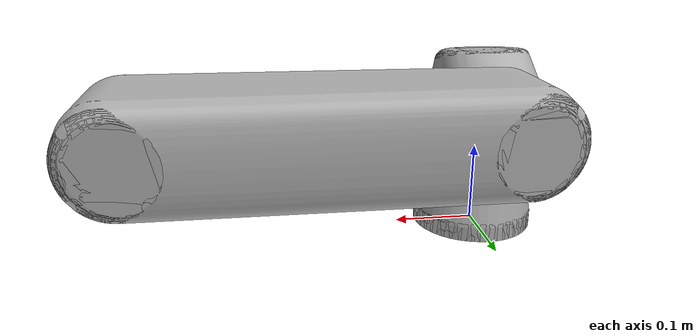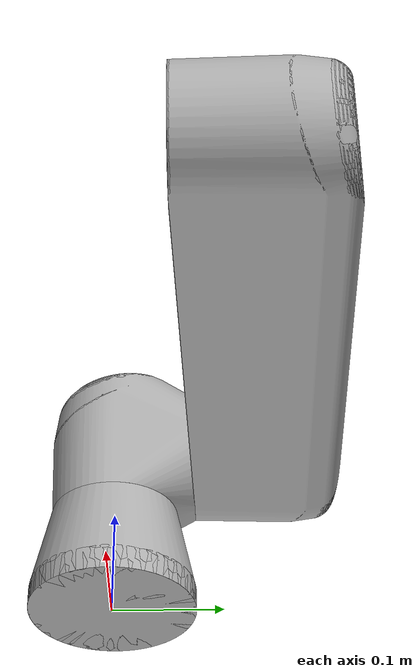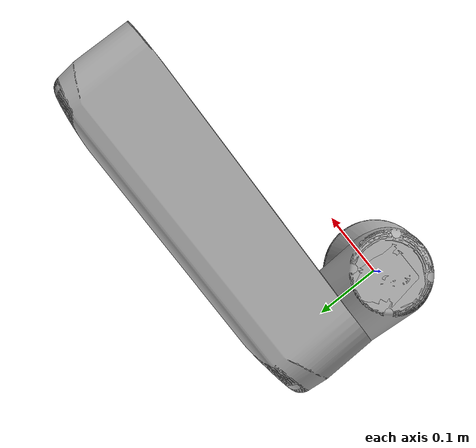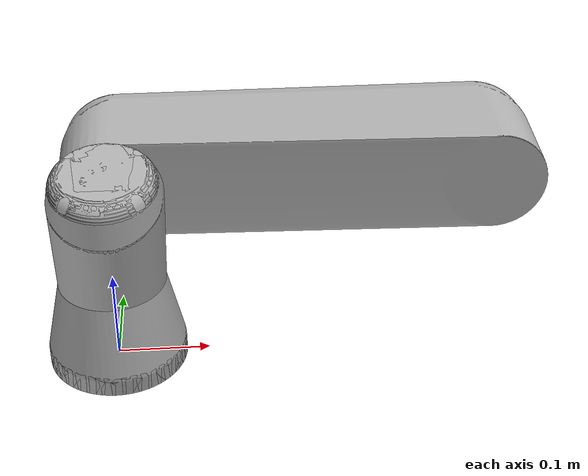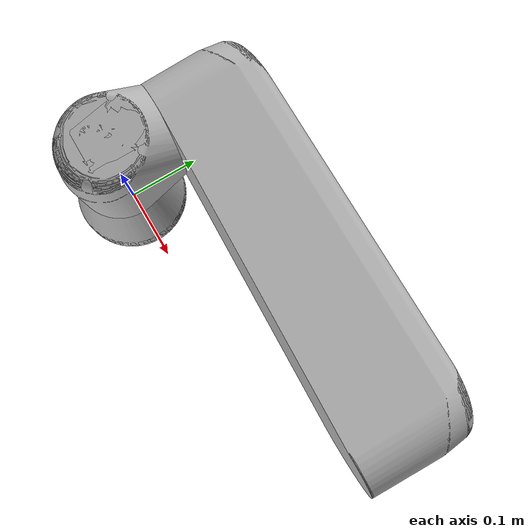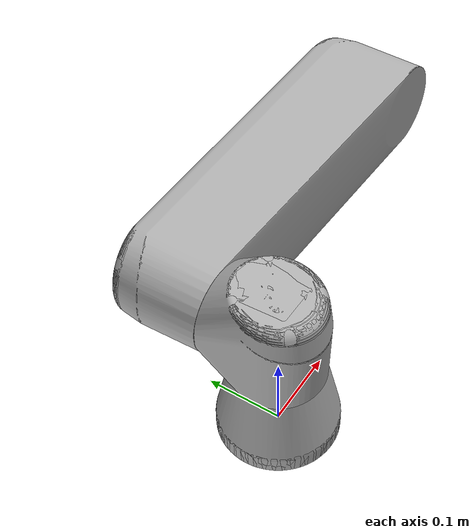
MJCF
<mujoco model="ur5e">
    <actuator>
        <!-- Physical limits of the actuator. -->
        <!-- Values taken from https://www.universal-robots.com/articles/ur-articles/max-joint-torques/ -->
        <motor ctrllimited="true" ctrlrange="-150.0 150.0" joint="shoulder_pan_joint" name="torq_j1"/>
        <motor ctrllimited="true" ctrlrange="-150.0 150.0" joint="shoulder_lift_joint" name="torq_j2"/>
    </actuator>
    <asset>
        <mesh name="base" file="meshes/base.stl" />
        <mesh name="shoulder" file="meshes/shoulder.stl" />
        <mesh name="upperarm" file="meshes/upperarm.stl" />

        <mesh name="base_vis" file="meshes/base_vis.stl" />
        <mesh name="shoulder_vis" file="meshes/shoulder_vis.stl" />
        <mesh name="upperarm_vis" file="meshes/upperarm_vis.stl" />
    </asset>
    <worldbody>
        <body name="base" pos="0 0 0">
            <!-- robot view -->
            <camera mode="fixed" name="robotview" pos="1.0 0 0.4" quat="0.653 0.271 0.271 0.653"/>
            <inertial diaginertia="0 0 0" mass="0" pos="0 0 0"/>
            <!-- mount attached here -->
            <geom type="mesh" contype="0" conaffinity="0" group="1" rgba="0.7 0.7 0.7 1" quat="0.707 0.707 0 0" mesh="base_vis" />
            <geom type="mesh" rgba="0.7 0.7 0.7 1" mesh="base" name="base_col"/>
            <body name="shoulder_link" pos="0 0 0.163">
                <inertial pos="0 0 0" mass="3.7" diaginertia="0.0102675 0.0102675 0.00666" />
                <joint name="shoulder_pan_joint" pos="0 0 0" axis="0 0 1" limited="true" range="-6.28319 6.28319" damping="0.001" frictionloss="0.01" />
                <geom type="mesh" contype="0" conaffinity="0" group="1" rgba="0.7 0.7 0.7 1" quat="0.707 0.707 0 0" mesh="shoulder_vis" name="shoulder_visual" />
                <geom type="mesh" rgba="0.7 0.7 0.7 1" mesh="shoulder" name="shoulder_col" />
                <body name="upper_arm_link" pos="0 0.138 0" quat="0.707107 0 0.707107 0">
                    <inertial pos="0 0 0.2125" mass="8.393" diaginertia="0.133886 0.133886 0.0151074" />
                    <joint name="shoulder_lift_joint" pos="0 0 0" axis="0 1 0" limited="true" range="-6.28319 6.28319" damping="0.001" frictionloss="0.01" />
                    <geom type="mesh" contype="0" conaffinity="0" group="1" rgba="0.7 0.7 0.7 1" quat="0.707 0.707 0 0" mesh="upperarm_vis" name="upperarm_visual" />
                    <geom type="mesh" rgba="0.7 0.7 0.7 1" mesh="upperarm" name="upperarm_col"/>
                    <body name="forearm_link" pos="0 -0.131 0.425">
                        <body name="right_hand" pos="0 0.131 0"  quat="0.707 0 0 0" >
                        </body>
                    </body>
                </body>
            </body>
        </body>
    </worldbody>
</mujoco>
